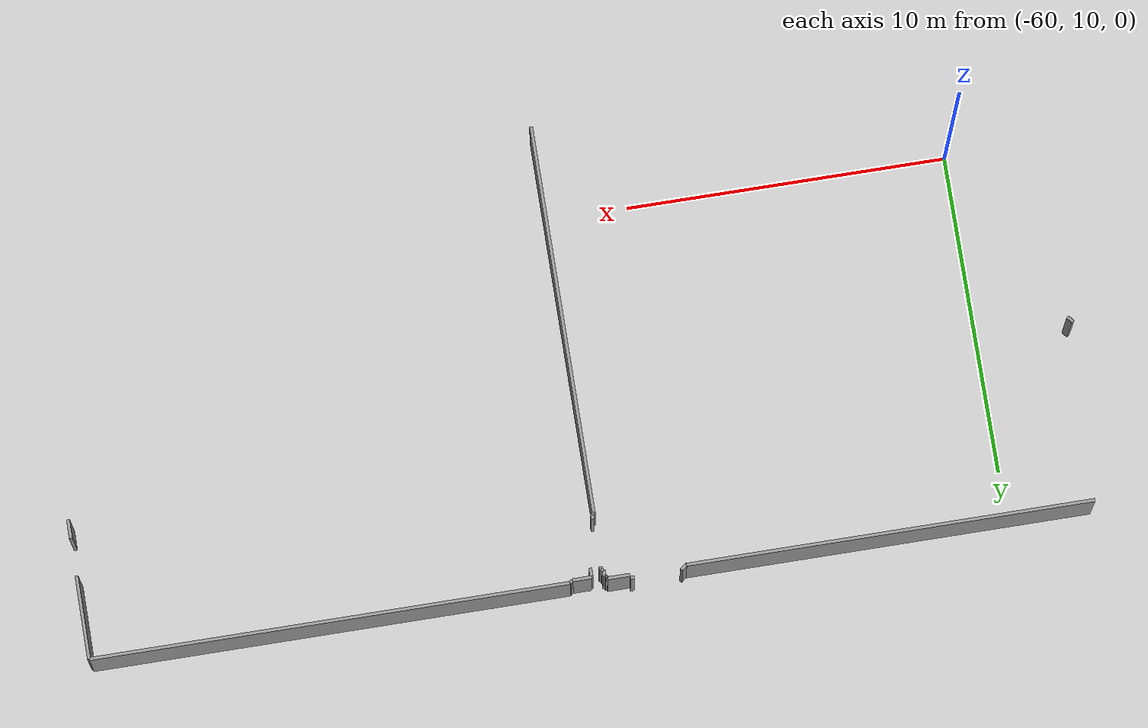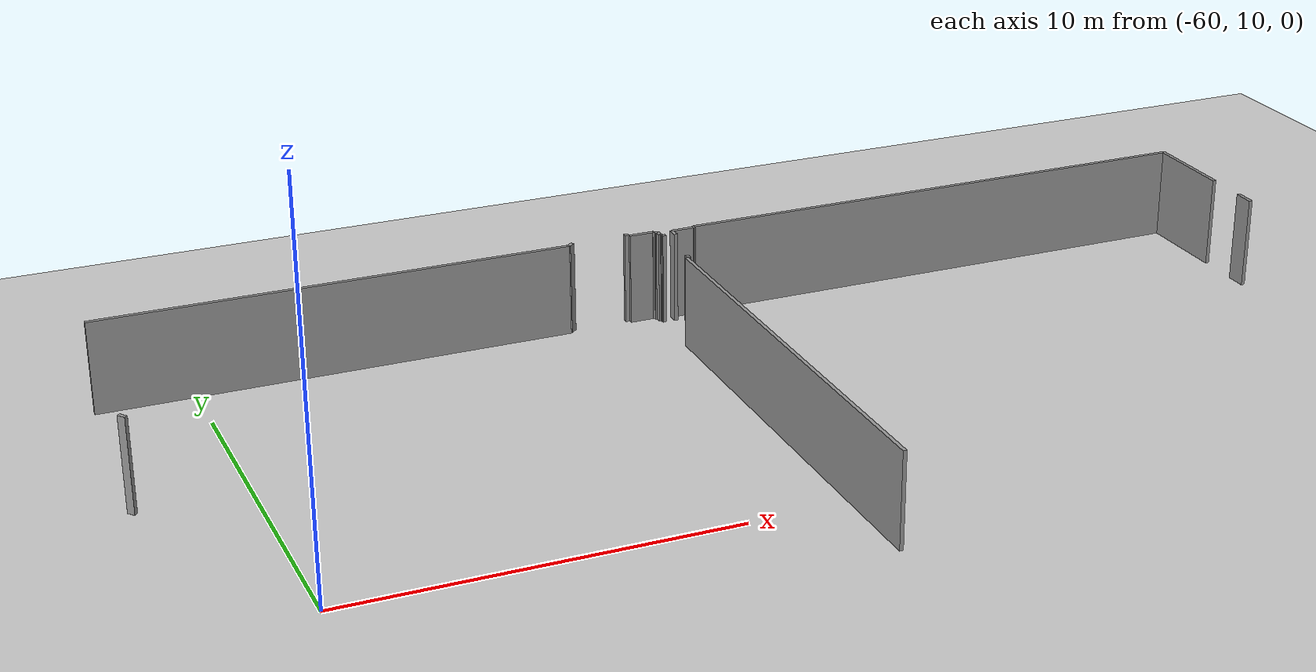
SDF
<sdf version="1.6">
 <world name="default">
  <model name="ground_plane">
   <static>1</static>
   <link name="link">
    <collision name="collision">
     <geometry><plane><normal>0 0 1</normal><size>100 100</size></plane></geometry>
     <surface><friction><ode><mu>100</mu><mu2>50</mu2></ode></friction></surface>
    </collision>
    <visual name="visual">
     <cast_shadows>0</cast_shadows>
     <geometry><plane><normal>0 0 1</normal><size>100 100</size></plane></geometry>
     <material>
      <script><uri>file://media/materials/scripts/gazebo.material</uri><name>Gazebo/Grey</name></script>
     </material>
    </visual>
   </link>
  </model>
  <model name="0510035739_A_40_1_102">
   <static>1</static>
   <link name="Wall_176">
    <collision name="Wall_176_Collision">
     <geometry><box><size>0.222223687499 0.1 2.5</size></box></geometry>
     <pose>0.11111184375 0 1.25 0 0 0</pose>
    </collision>
    <visual name="Wall_176_Visual">
     <pose>0.11111184375 0 1.25 0 0 0</pose>
     <geometry><box><size>0.222223687499 0.1 2.5</size></box></geometry>
     <material>
      <script><uri>file://media/materials/scripts/gazebo.material</uri><name>Gazebo/Grey</name></script>
      <ambient>1 1 1 1</ambient>
     </material>
    </visual>
    <pose>29.7860471514 -33.8582707251 0 0 0 2.23676556417</pose>
   </link>
   <link name="Wall_180">
    <collision name="Wall_180_Collision">
     <geometry><box><size>12.6568284951 0.1 2.5</size></box></geometry>
     <pose>6.32841424756 0 1.25 0 0 0</pose>
    </collision>
    <visual name="Wall_180_Visual">
     <pose>6.32841424756 0 1.25 0 0 0</pose>
     <geometry><box><size>12.6568284951 0.1 2.5</size></box></geometry>
     <material>
      <script><uri>file://media/materials/scripts/gazebo.material</uri><name>Gazebo/Grey</name></script>
      <ambient>1 1 1 1</ambient>
     </material>
    </visual>
    <pose>29.9223228511 -28.1288327541 0 0 0 0.0</pose>
   </link>
   <link name="Wall_181">
    <collision name="Wall_181_Collision">
     <geometry><box><size>0.20680610517 0.1 2.5</size></box></geometry>
     <pose>0.103403052585 0 1.25 0 0 0</pose>
    </collision>
    <visual name="Wall_181_Visual">
     <pose>0.103403052585 0 1.25 0 0 0</pose>
     <geometry><box><size>0.20680610517 0.1 2.5</size></box></geometry>
     <material>
      <script><uri>file://media/materials/scripts/gazebo.material</uri><name>Gazebo/Grey</name></script>
      <ambient>1 1 1 1</ambient>
     </material>
    </visual>
    <pose>42.5791513463 -28.1288327541 0 0 0 0.699942455676</pose>
   </link>
   <link name="Wall_182">
    <collision name="Wall_182_Collision">
     <geometry><box><size>0.123794373979 0.1 2.5</size></box></geometry>
     <pose>0.0618971869894 0 1.25 0 0 0</pose>
    </collision>
    <visual name="Wall_182_Visual">
     <pose>0.0618971869894 0 1.25 0 0 0</pose>
     <geometry><box><size>0.123794373979 0.1 2.5</size></box></geometry>
     <material>
      <script><uri>file://media/materials/scripts/gazebo.material</uri><name>Gazebo/Grey</name></script>
      <ambient>1 1 1 1</ambient>
     </material>
    </visual>
    <pose>44.1984123244 -27.9956137055 0 0 0 0.0</pose>
   </link>
   <link name="Wall_184">
    <collision name="Wall_184_Collision">
     <geometry><box><size>0.690293731445 0.1 2.5</size></box></geometry>
     <pose>0.345146865723 0 1.25 0 0 0</pose>
    </collision>
    <visual name="Wall_184_Visual">
     <pose>0.345146865723 0 1.25 0 0 0</pose>
     <geometry><box><size>0.690293731445 0.1 2.5</size></box></geometry>
     <material>
      <script><uri>file://media/materials/scripts/gazebo.material</uri><name>Gazebo/Grey</name></script>
      <ambient>1 1 1 1</ambient>
     </material>
    </visual>
    <pose>44.3222066984 -28.094190707 0 0 0 0.0</pose>
   </link>
   <link name="Wall_185">
    <collision name="Wall_185_Collision">
     <geometry><box><size>0.0624066288576 0.1 2.5</size></box></geometry>
     <pose>0.0312033144288 0 1.25 0 0 0</pose>
    </collision>
    <visual name="Wall_185_Visual">
     <pose>0.0312033144288 0 1.25 0 0 0</pose>
     <geometry><box><size>0.0624066288576 0.1 2.5</size></box></geometry>
     <material>
      <script><uri>file://media/materials/scripts/gazebo.material</uri><name>Gazebo/Grey</name></script>
      <ambient>1 1 1 1</ambient>
     </material>
    </visual>
    <pose>45.0125004298 -28.094190707 0 0 0 -1.57079632679</pose>
   </link>
   <link name="Wall_186">
    <collision name="Wall_186_Collision">
     <geometry><box><size>0.0804918151796 0.1 2.5</size></box></geometry>
     <pose>0.0402459075898 0 1.25 0 0 0</pose>
    </collision>
    <visual name="Wall_186_Visual">
     <pose>0.0402459075898 0 1.25 0 0 0</pose>
     <geometry><box><size>0.0804918151796 0.1 2.5</size></box></geometry>
     <material>
      <script><uri>file://media/materials/scripts/gazebo.material</uri><name>Gazebo/Grey</name></script>
      <ambient>1 1 1 1</ambient>
     </material>
    </visual>
    <pose>45.0125004298 -28.1565973359 0 0 0 0.0</pose>
   </link>
   <link name="Wall_187">
    <collision name="Wall_187_Collision">
     <geometry><box><size>0.219060003337 0.1 2.5</size></box></geometry>
     <pose>0.109530001668 0 1.25 0 0 0</pose>
    </collision>
    <visual name="Wall_187_Visual">
     <pose>0.109530001668 0 1.25 0 0 0</pose>
     <geometry><box><size>0.219060003337 0.1 2.5</size></box></geometry>
     <material>
      <script><uri>file://media/materials/scripts/gazebo.material</uri><name>Gazebo/Grey</name></script>
      <ambient>1 1 1 1</ambient>
     </material>
    </visual>
    <pose>45.092992245 -28.1565973359 0 0 0 -1.57079632679</pose>
   </link>
   <link name="Wall_188">
    <collision name="Wall_188_Collision">
     <geometry><box><size>0.0766710011679 0.1 2.5</size></box></geometry>
     <pose>0.0383355005839 0 1.25 0 0 0</pose>
    </collision>
    <visual name="Wall_188_Visual">
     <pose>0.0383355005839 0 1.25 0 0 0</pose>
     <geometry><box><size>0.0766710011679 0.1 2.5</size></box></geometry>
     <material>
      <script><uri>file://media/materials/scripts/gazebo.material</uri><name>Gazebo/Grey</name></script>
      <ambient>1 1 1 1</ambient>
     </material>
    </visual>
    <pose>45.092992245 -28.3756573392 0 0 0 0.0</pose>
   </link>
   <link name="Wall_189">
    <collision name="Wall_189_Collision">
     <geometry><box><size>0.103926141118 0.1 2.5</size></box></geometry>
     <pose>0.051963070559 0 1.25 0 0 0</pose>
    </collision>
    <visual name="Wall_189_Visual">
     <pose>0.051963070559 0 1.25 0 0 0</pose>
     <geometry><box><size>0.103926141118 0.1 2.5</size></box></geometry>
     <material>
      <script><uri>file://media/materials/scripts/gazebo.material</uri><name>Gazebo/Grey</name></script>
      <ambient>1 1 1 1</ambient>
     </material>
    </visual>
    <pose>45.1696632462 -28.3756573392 0 0 0 -1.57079632679</pose>
   </link>
   <link name="Wall_190">
    <collision name="Wall_190_Collision">
     <geometry><box><size>0.16658749091 0.1 2.5</size></box></geometry>
     <pose>0.0832937454548 0 1.25 0 0 0</pose>
    </collision>
    <visual name="Wall_190_Visual">
     <pose>0.0832937454548 0 1.25 0 0 0</pose>
     <geometry><box><size>0.16658749091 0.1 2.5</size></box></geometry>
     <material>
      <script><uri>file://media/materials/scripts/gazebo.material</uri><name>Gazebo/Grey</name></script>
      <ambient>1 1 1 1</ambient>
     </material>
    </visual>
    <pose>45.1696632462 -29.9689367821 0 0 0 -1.57079632679</pose>
   </link>
   <link name="Wall_191">
    <collision name="Wall_191_Collision">
     <geometry><box><size>0.0590952567141 0.1 2.5</size></box></geometry>
     <pose>0.0295476283571 0 1.25 0 0 0</pose>
    </collision>
    <visual name="Wall_191_Visual">
     <pose>0.0295476283571 0 1.25 0 0 0</pose>
     <geometry><box><size>0.0590952567141 0.1 2.5</size></box></geometry>
     <material>
      <script><uri>file://media/materials/scripts/gazebo.material</uri><name>Gazebo/Grey</name></script>
      <ambient>1 1 1 1</ambient>
     </material>
    </visual>
    <pose>45.1696632462 -30.135524273 0 0 0 3.14159265359</pose>
   </link>
   <link name="Wall_192">
    <collision name="Wall_192_Collision">
     <geometry><box><size>12.2092838139 0.1 2.5</size></box></geometry>
     <pose>6.10464190694 0 1.25 0 0 0</pose>
    </collision>
    <visual name="Wall_192_Visual">
     <pose>6.10464190694 0 1.25 0 0 0</pose>
     <geometry><box><size>12.2092838139 0.1 2.5</size></box></geometry>
     <material>
      <script><uri>file://media/materials/scripts/gazebo.material</uri><name>Gazebo/Grey</name></script>
      <ambient>1 1 1 1</ambient>
     </material>
    </visual>
    <pose>45.1105679895 -30.135524273 0 0 0 -1.57079632679</pose>
   </link>
   <link name="Wall_241">
    <collision name="Wall_241_Collision">
     <geometry><box><size>0.286306329943 0.1 2.5</size></box></geometry>
     <pose>0.143153164971 0 1.25 0 0 0</pose>
    </collision>
    <visual name="Wall_241_Visual">
     <pose>0.143153164971 0 1.25 0 0 0</pose>
     <geometry><box><size>0.286306329943 0.1 2.5</size></box></geometry>
     <material>
      <script><uri>file://media/materials/scripts/gazebo.material</uri><name>Gazebo/Grey</name></script>
      <ambient>1 1 1 1</ambient>
     </material>
    </visual>
    <pose>45.4895927394 -28.4913006433 0 0 0 1.57079632679</pose>
   </link>
   <link name="Wall_242">
    <collision name="Wall_242_Collision">
     <geometry><box><size>0.598084753296 0.1 2.5</size></box></geometry>
     <pose>0.299042376648 0 1.25 0 0 0</pose>
    </collision>
    <visual name="Wall_242_Visual">
     <pose>0.299042376648 0 1.25 0 0 0</pose>
     <geometry><box><size>0.598084753296 0.1 2.5</size></box></geometry>
     <material>
      <script><uri>file://media/materials/scripts/gazebo.material</uri><name>Gazebo/Grey</name></script>
      <ambient>1 1 1 1</ambient>
     </material>
    </visual>
    <pose>45.4895927394 -28.2049943134 0 0 0 0.0</pose>
   </link>
   <link name="Wall_243">
    <collision name="Wall_243_Collision">
     <geometry><box><size>0.101700024465 0.1 2.5</size></box></geometry>
     <pose>0.0508500122327 0 1.25 0 0 0</pose>
    </collision>
    <visual name="Wall_243_Visual">
     <pose>0.0508500122327 0 1.25 0 0 0</pose>
     <geometry><box><size>0.101700024465 0.1 2.5</size></box></geometry>
     <material>
      <script><uri>file://media/materials/scripts/gazebo.material</uri><name>Gazebo/Grey</name></script>
      <ambient>1 1 1 1</ambient>
     </material>
    </visual>
    <pose>46.0876774927 -28.2049943134 0 0 0 0.709169602691</pose>
   </link>
   <link name="Wall_244">
    <collision name="Wall_244_Collision">
     <geometry><box><size>14.8395321795 0.1 2.5</size></box></geometry>
     <pose>7.41976608977 0 1.25 0 0 0</pose>
    </collision>
    <visual name="Wall_244_Visual">
     <pose>7.41976608977 0 1.25 0 0 0</pose>
     <geometry><box><size>14.8395321795 0.1 2.5</size></box></geometry>
     <material>
      <script><uri>file://media/materials/scripts/gazebo.material</uri><name>Gazebo/Grey</name></script>
      <ambient>1 1 1 1</ambient>
     </material>
    </visual>
    <pose>46.1648579358 -28.1387668705 0 0 0 0.0</pose>
   </link>
   <link name="Wall_245">
    <collision name="Wall_245_Collision">
     <geometry><box><size>2.58821941152 0.1 2.5</size></box></geometry>
     <pose>1.29410970576 0 1.25 0 0 0</pose>
    </collision>
    <visual name="Wall_245_Visual">
     <pose>1.29410970576 0 1.25 0 0 0</pose>
     <geometry><box><size>2.58821941152 0.1 2.5</size></box></geometry>
     <material>
      <script><uri>file://media/materials/scripts/gazebo.material</uri><name>Gazebo/Grey</name></script>
      <ambient>1 1 1 1</ambient>
     </material>
    </visual>
    <pose>61.0043901153 -28.1387668705 0 0 0 -1.57079632679</pose>
   </link>
   <link name="Wall_246">
    <collision name="Wall_246_Collision">
     <geometry><box><size>0.586622311261 0.1 2.5</size></box></geometry>
     <pose>0.293311155631 0 1.25 0 0 0</pose>
    </collision>
    <visual name="Wall_246_Visual">
     <pose>0.293311155631 0 1.25 0 0 0</pose>
     <geometry><box><size>0.586622311261 0.1 2.5</size></box></geometry>
     <material>
      <script><uri>file://media/materials/scripts/gazebo.material</uri><name>Gazebo/Grey</name></script>
      <ambient>1 1 1 1</ambient>
     </material>
    </visual>
    <pose>61.0043901153 -31.8999761836 0 0 0 -1.57079632679</pose>
   </link>
   <pose>-92.5 49.8157534709 0 0 0 0</pose>
  </model>
 </world>
</sdf>
